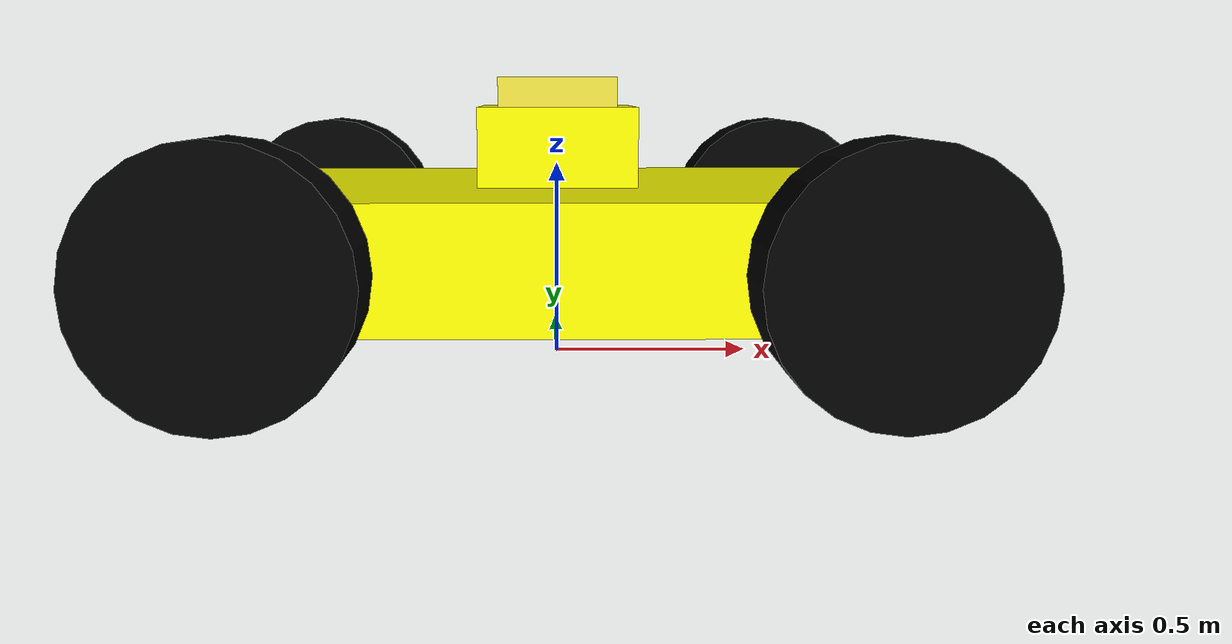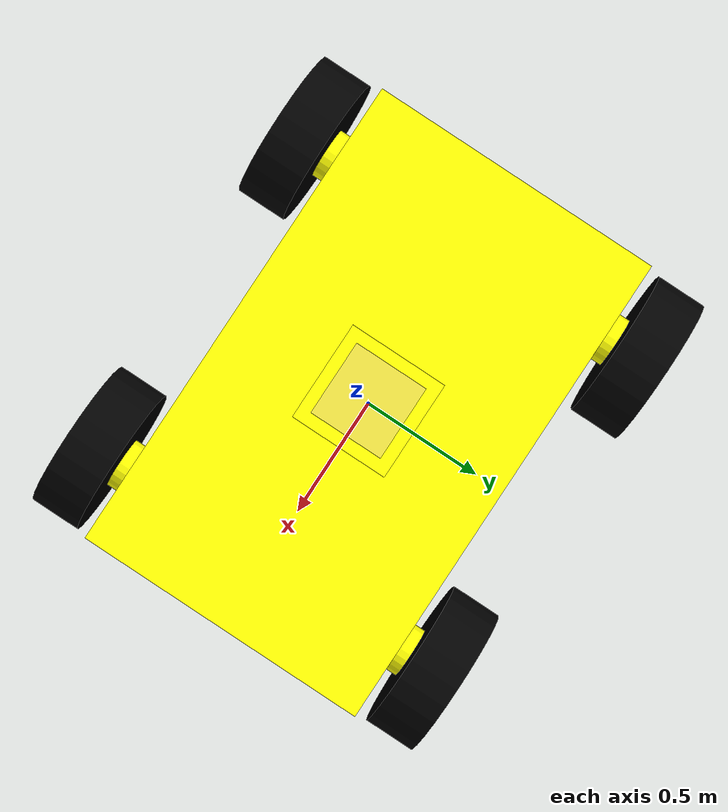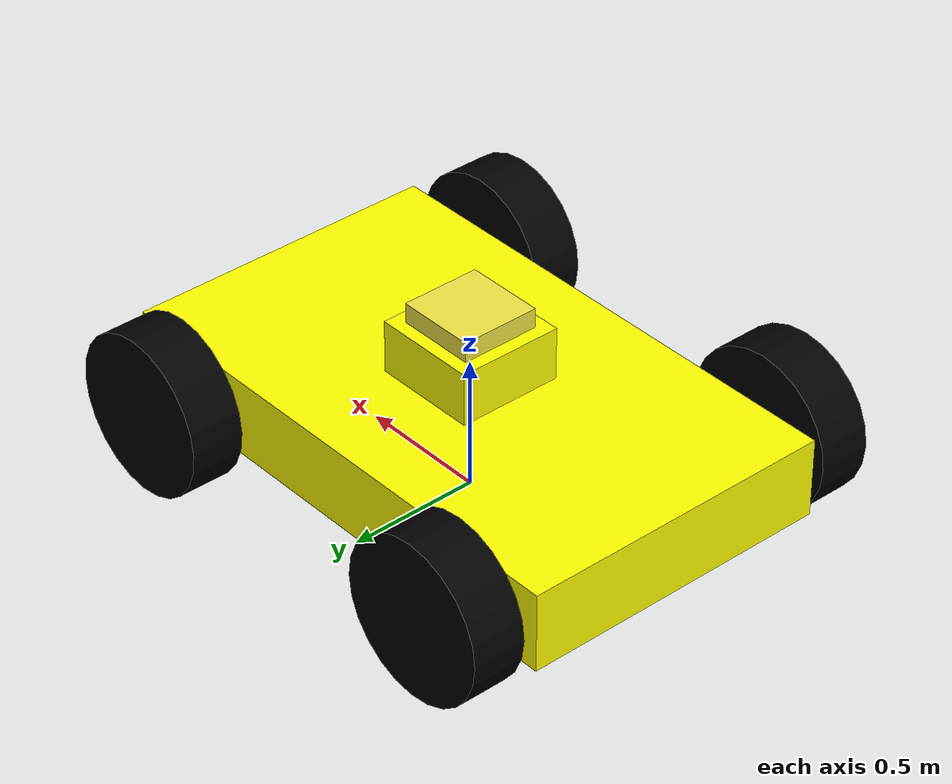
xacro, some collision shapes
<?xml version="1.0" ?>
<robot name="simple_robot"  xmlns:xacro="http://www.ros.org/wiki/xacro">
<!-- include my xacro to simplify urdf: -->
<xacro:include filename="$(find simple_robot)/urdf/links_joints.xacro" />
<!-- include my gazebo to simplify urdf: -->
<xacro:include filename="$(find simple_robot)/urdf/simple.gazebo" />

<material name="black">
  <color rgba="0 0 0 1"></color>
</material>

<material name="yellow">
   <color rgba="1.0 1.0 0 1"></color>
</material>

<!--base footprint and chassis -->

  <link name="base_footprint"></link>

  <m_joint name="base_joint" type="fixed" origin_rpy="0 0 0" axis_xyz="0 0 0"
          origin_xyz="0 0 0" parent="base_footprint" child="link_chassis" />

  <m_link_box name="link_chassis" origin_rpy="0 0 0" material="yellow"
                   origin_xyz="0 0 0.3" size="2 1.2 0.3" />

<!--left_front: -->

 <m_joint name="LF_shaft_joint" type="fixed" origin_rpy="0 0 0" axis_xyz="0 0 0"
          origin_xyz="0.7 0.6 0.3" parent="link_chassis" child="left_front_shaft" />

  <m_link_shaft name="left_front_shaft" origin_rpy="1.57 0 0" material="yellow"
                   origin_xyz="0 0 0" radius="0.1" length="0.1" />

  <m_joint name="LF_wheel_joint" type="continuous" origin_rpy="0 0 0" axis_xyz="0 1 0"
           origin_xyz="0 0 0" parent="left_front_shaft" child="left_front_wheel" />

  <m_link_wheel name="left_front_wheel" origin_rpy="1.57 0 0" material="black"
                   origin_xyz="0 0.15 0" radius="0.3" length="0.2" />

<!-- left_back: -->

  <m_joint name="LB_shaft_joint" type="fixed" origin_rpy="0 0 0" axis_xyz="0 0 0"
           origin_xyz="-0.7 0.6 0.3" parent="link_chassis" child="left_back_shaft" />

  <m_link_shaft name="left_back_shaft" origin_rpy="1.57 0 0" material="yellow"
                   origin_xyz="0 0 0" radius="0.1"  length="0.1" />

  <m_joint name="LB_wheel_joint" type="continuous" origin_rpy="0 0 0" axis_xyz="0 1 0"
           origin_xyz="0 0 0" parent="left_back_shaft" child="left_back_wheel" />

  <m_link_wheel name="left_back_wheel" origin_rpy="1.57 0 0" material="black"
                   origin_xyz="0 0.15 0" radius="0.3" length="0.2" />

<!-- right_front: -->

  <m_joint name="RF_shaft_joint" type="fixed" origin_rpy="0 0 0" axis_xyz="0 0 0"
           origin_xyz="0.7 -0.6 0.3" parent="link_chassis" child="right_front_shaft" />

  <m_link_shaft name="right_front_shaft" origin_rpy="1.57 0 0" material="yellow"
                   origin_xyz="0 0 0" radius="0.1"  length="0.1" />

  <m_joint name="RF_wheel_joint" type="continuous" origin_rpy="0 0 0" axis_xyz="0 1 0"
           origin_xyz="0 0 0" parent="right_front_shaft" child="right_front_wheel" />

  <m_link_wheel name="right_front_wheel" origin_rpy="1.57 0 0" material="black"
                   origin_xyz="0 -0.15 0" radius="0.3" length="0.2" />

<!-- right_back: -->

  <m_joint name="RB_shaft_joint" type="fixed" origin_rpy="0 0 0" axis_xyz="0 0 0"
           origin_xyz="-0.7 -0.6 0.3" parent="link_chassis" child="right_back_shaft" />

  <m_link_shaft name="right_back_shaft" origin_rpy="1.57 0 0" material="yellow"
                   origin_xyz="0 0 0" radius="0.1"  length="0.1" />

  <m_joint name="RB_wheel_joint" type="continuous" origin_rpy="0 0 0" axis_xyz="0 1 0"
           origin_xyz="0 0 0" parent="right_back_shaft" child="right_back_wheel" />

  <m_link_wheel name="right_back_wheel" origin_rpy="1.57 0 0" material="black"
                   origin_xyz="0 -0.15 0" radius="0.3" length="0.2" />

<!-- lidar -->
  <m_joint name="sensor_box_jpint" type="fixed" origin_rpy="0 0 0" axis_xyz="0 0 0"
           origin_xyz="0 0 0.45" parent="link_chassis" child="sensor_box" />

  <m_link_box name="sensor_box" origin_rpy="0 0 0" material="yellow"
                   origin_xyz="0 0 0" size="0.4 0.4 0.4" />

  <m_joint name="sensor_joint" type="fixed" origin_rpy="0 0 0" axis_xyz="0 0 0"
           origin_xyz="0 0 0.2" parent="sensor_box" child="hokuyo_link" />

 <link name="hokuyo_link">
    <collision>
      <origin xyz="0 0 0" rpy="0 0 0"/>
      <geometry>
    <box size="0.3 0.3 0.15"/>
      </geometry>
    </collision>

    <visual>
      <origin xyz="0 0 0" rpy="0 0 0"/>
      <geometry>
        <mesh filename="package://simple_robot/meshes/hokuyo_ust10.stl" scale="3 3 1"/>
      </geometry>
    </visual>

    <inertial>
      <mass value="1e-5" />
      <origin xyz="0 0 0" rpy="0 0 0"/>
      <inertia ixx="1e-6" ixy="0" ixz="0" iyy="1e-6" iyz="0" izz="1e-6" />
    </inertial>
  </link>

</robot>

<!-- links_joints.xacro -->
<robot xmlns:xacro="http://www.ros.org/wiki/xacro">

  <xacro:macro name="m_joint" params="name type origin_rpy origin_xyz parent child axis_xyz">
    <joint name="${name}" type="${type}">
      <axis xyz = "${axis_xyz}"/>
      <origin rpy="${origin_rpy}" xyz="${origin_xyz}" />
      <parent link="${parent}" />
      <child link="${child}" />
    </joint>
   </xacro:macro>

  <xacro:macro name="m_link_shaft" params="name origin_rpy origin_xyz radius length material">
    <link name="${name}">

      <inertial>
        <mass value="1"/>
        <origin rpy="${origin_rpy}" xyz="${origin_xyz}"/>
        <inertia ixx="0.1" iyy="0.1" izz="0.1" ixy="0" ixz="0" iyz="0"/>
      </inertial>

      <collision>
        <origin rpy="${origin_rpy}" xyz="${origin_xyz}"/>
        <geometry>
          <cylinder radius="${radius}" length="${length}" />
        </geometry>
      </collision>

      <visual>
        <origin rpy="${origin_rpy}" xyz="${origin_xyz}"/>
        <geometry>
          <cylinder radius="${radius}" length="${length}" />
        </geometry>
        <material name="${material}" />
      </visual>
     </link>

   </xacro:macro>

  <xacro:macro name="m_link_wheel" params="name origin_rpy origin_xyz radius length material">
    <link name="${name}">

      <inertial>
        <mass value="0.5"/>
        <origin rpy="${origin_rpy}" xyz="${origin_xyz}"/>
        <inertia ixx="0.05" iyy="0.1" izz="0.05" ixy="0" ixz="0" iyz="0"/>
      </inertial>

      <collision>
        <origin rpy="${origin_rpy}" xyz="${origin_xyz}"/>
        <geometry>
          <cylinder radius="${radius}" length="${length}" />
        </geometry>
      </collision>

      <visual>
        <origin rpy="${origin_rpy}" xyz="${origin_xyz}"/>
        <geometry>
          <cylinder radius="${radius}" length="${length}" />
        </geometry>
        <material name="${material}" />
      </visual>
     </link>
   </xacro:macro>

  <xacro:macro name="m_link_box" params="name origin_rpy origin_xyz size material">
    <link name="${name}">

      <inertial>
        <mass value="3"/>
        <origin rpy="${origin_rpy}" xyz="${origin_xyz}"/>
        <inertia ixx="0.2" iyy="0.2" izz="0.2" ixy="0" ixz="0" iyz="0"/>
      </inertial>

      <collision>
        <origin rpy="${origin_rpy}" xyz="${origin_xyz}"/>
         <geometry>
           <box size="${size}"/>
         </geometry>
      </collision>

      <visual>
        <origin rpy="${origin_rpy}" xyz="${origin_xyz}"/>
         <geometry>
           <box size="${size}"/>
         </geometry>
         <material name="${material}" />
      </visual>
    </link>
  </xacro:macro>

</robot>
